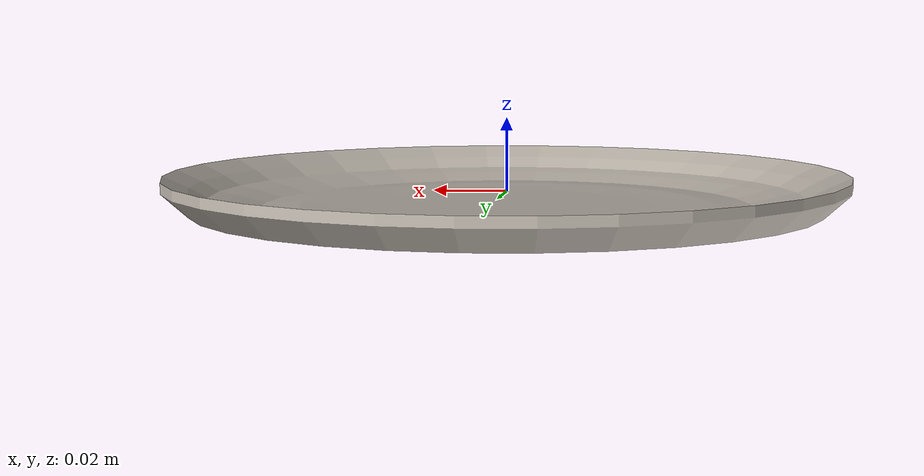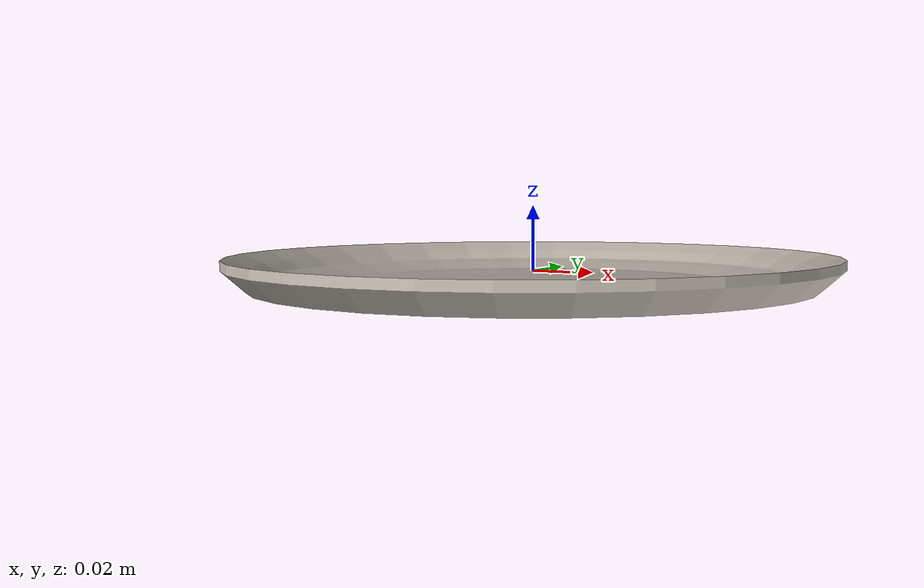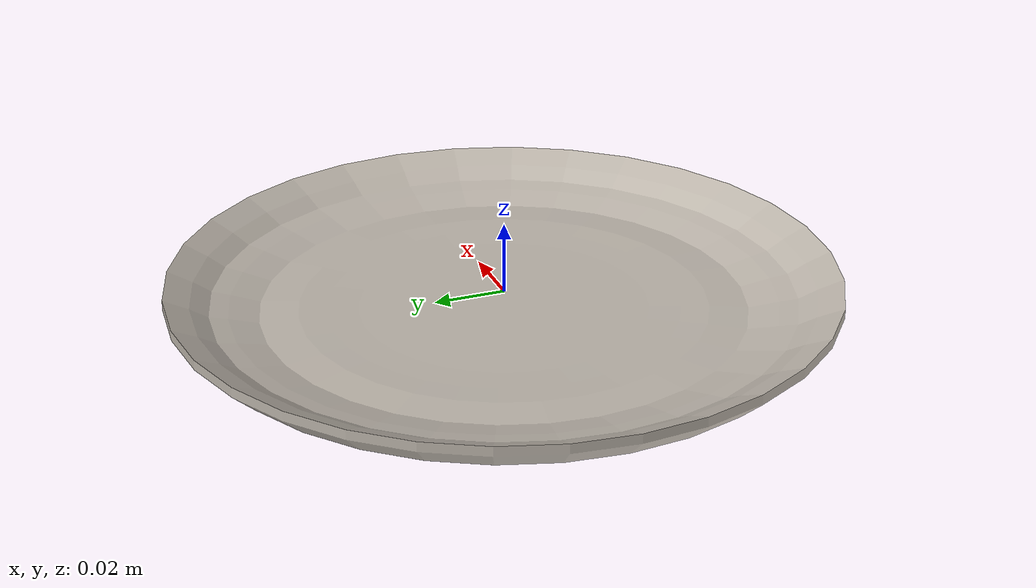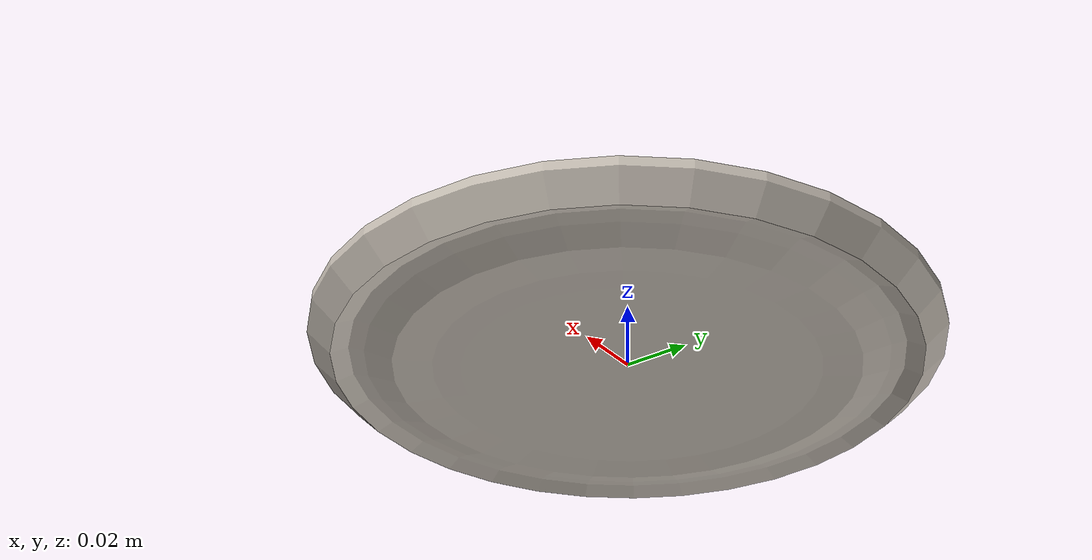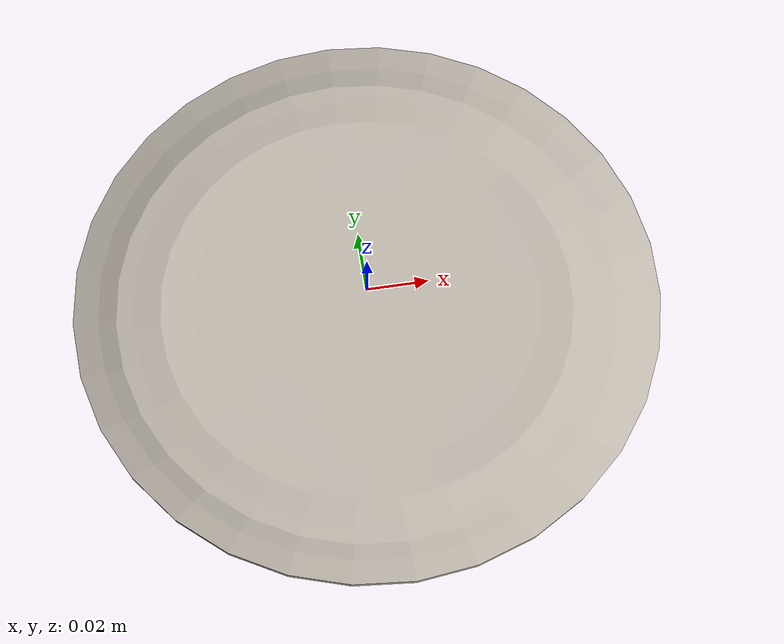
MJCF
<mujoco model="plate_42">
  <asset>
    <mesh file="visual/model_normalized_0.obj" name="model_normalized_0_vis" scale="0.185 0.185 0.185" refquat="1.0 0.0 0.0 0.0"/>
    <mesh file="collision/model_normalized_collision_22.obj" name="model_normalized_collision_22._coll" scale="0.185 0.185 0.185" refquat="1.0 0.0 0.0 0.0"/>
    <mesh file="collision/model_normalized_collision_23.obj" name="model_normalized_collision_23._coll" scale="0.185 0.185 0.185" refquat="1.0 0.0 0.0 0.0"/>
    <mesh file="collision/model_normalized_collision_21.obj" name="model_normalized_collision_21._coll" scale="0.185 0.185 0.185" refquat="1.0 0.0 0.0 0.0"/>
    <mesh file="collision/model_normalized_collision_20.obj" name="model_normalized_collision_20._coll" scale="0.185 0.185 0.185" refquat="1.0 0.0 0.0 0.0"/>
    <mesh file="collision/model_normalized_collision_24.obj" name="model_normalized_collision_24._coll" scale="0.185 0.185 0.185" refquat="1.0 0.0 0.0 0.0"/>
    <mesh file="collision/model_normalized_collision_30.obj" name="model_normalized_collision_30._coll" scale="0.185 0.185 0.185" refquat="1.0 0.0 0.0 0.0"/>
    <mesh file="collision/model_normalized_collision_18.obj" name="model_normalized_collision_18._coll" scale="0.185 0.185 0.185" refquat="1.0 0.0 0.0 0.0"/>
    <mesh file="collision/model_normalized_collision_19.obj" name="model_normalized_collision_19._coll" scale="0.185 0.185 0.185" refquat="1.0 0.0 0.0 0.0"/>
    <mesh file="collision/model_normalized_collision_31.obj" name="model_normalized_collision_31._coll" scale="0.185 0.185 0.185" refquat="1.0 0.0 0.0 0.0"/>
    <mesh file="collision/model_normalized_collision_25.obj" name="model_normalized_collision_25._coll" scale="0.185 0.185 0.185" refquat="1.0 0.0 0.0 0.0"/>
    <mesh file="collision/model_normalized_collision_27.obj" name="model_normalized_collision_27._coll" scale="0.185 0.185 0.185" refquat="1.0 0.0 0.0 0.0"/>
    <mesh file="collision/model_normalized_collision_26.obj" name="model_normalized_collision_26._coll" scale="0.185 0.185 0.185" refquat="1.0 0.0 0.0 0.0"/>
    <mesh file="collision/model_normalized_collision_9.obj" name="model_normalized_collision_9._coll" scale="0.185 0.185 0.185" refquat="1.0 0.0 0.0 0.0"/>
    <mesh file="collision/model_normalized_collision_8.obj" name="model_normalized_collision_8._coll" scale="0.185 0.185 0.185" refquat="1.0 0.0 0.0 0.0"/>
    <mesh file="collision/model_normalized_collision_6.obj" name="model_normalized_collision_6._coll" scale="0.185 0.185 0.185" refquat="1.0 0.0 0.0 0.0"/>
    <mesh file="collision/model_normalized_collision_7.obj" name="model_normalized_collision_7._coll" scale="0.185 0.185 0.185" refquat="1.0 0.0 0.0 0.0"/>
    <mesh file="collision/model_normalized_collision_5.obj" name="model_normalized_collision_5._coll" scale="0.185 0.185 0.185" refquat="1.0 0.0 0.0 0.0"/>
    <mesh file="collision/model_normalized_collision_4.obj" name="model_normalized_collision_4._coll" scale="0.185 0.185 0.185" refquat="1.0 0.0 0.0 0.0"/>
    <mesh file="collision/model_normalized_collision_0.obj" name="model_normalized_collision_0._coll" scale="0.185 0.185 0.185" refquat="1.0 0.0 0.0 0.0"/>
    <mesh file="collision/model_normalized_collision_1.obj" name="model_normalized_collision_1._coll" scale="0.185 0.185 0.185" refquat="1.0 0.0 0.0 0.0"/>
    <mesh file="collision/model_normalized_collision_3.obj" name="model_normalized_collision_3._coll" scale="0.185 0.185 0.185" refquat="1.0 0.0 0.0 0.0"/>
    <mesh file="collision/model_normalized_collision_2.obj" name="model_normalized_collision_2._coll" scale="0.185 0.185 0.185" refquat="1.0 0.0 0.0 0.0"/>
    <mesh file="collision/model_normalized_collision_17.obj" name="model_normalized_collision_17._coll" scale="0.185 0.185 0.185" refquat="1.0 0.0 0.0 0.0"/>
    <mesh file="collision/model_normalized_collision_16.obj" name="model_normalized_collision_16._coll" scale="0.185 0.185 0.185" refquat="1.0 0.0 0.0 0.0"/>
    <mesh file="collision/model_normalized_collision_28.obj" name="model_normalized_collision_28._coll" scale="0.185 0.185 0.185" refquat="1.0 0.0 0.0 0.0"/>
    <mesh file="collision/model_normalized_collision_14.obj" name="model_normalized_collision_14._coll" scale="0.185 0.185 0.185" refquat="1.0 0.0 0.0 0.0"/>
    <mesh file="collision/model_normalized_collision_15.obj" name="model_normalized_collision_15._coll" scale="0.185 0.185 0.185" refquat="1.0 0.0 0.0 0.0"/>
    <mesh file="collision/model_normalized_collision_29.obj" name="model_normalized_collision_29._coll" scale="0.185 0.185 0.185" refquat="1.0 0.0 0.0 0.0"/>
    <mesh file="collision/model_normalized_collision_11.obj" name="model_normalized_collision_11._coll" scale="0.185 0.185 0.185" refquat="1.0 0.0 0.0 0.0"/>
    <mesh file="collision/model_normalized_collision_10.obj" name="model_normalized_collision_10._coll" scale="0.185 0.185 0.185" refquat="1.0 0.0 0.0 0.0"/>
    <mesh file="collision/model_normalized_collision_12.obj" name="model_normalized_collision_12._coll" scale="0.185 0.185 0.185" refquat="1.0 0.0 0.0 0.0"/>
    <mesh file="collision/model_normalized_collision_13.obj" name="model_normalized_collision_13._coll" scale="0.185 0.185 0.185" refquat="1.0 0.0 0.0 0.0"/>
    <texture type="2d" name="image0" file="visual/image0.png"/>
    <material name="Plate_Material" texture="image0" specular="0.5" shininess="0.359999993"/>
  </asset>
  <worldbody>
    <body>
      <body name="object">
        <geom solimp="0.998 0.998 0.001" solref="0.001 1" density="100" friction="5.0 0.3 0.1" type="mesh" mesh="model_normalized_0_vis" conaffinity="0" contype="0" group="1" material="Plate_Material"/>
        <geom solimp="0.998 0.998 0.001" solref="0.001 1" density="100" friction="5.0 0.3 0.1" type="mesh" mesh="model_normalized_collision_22._coll" group="0" rgba="0.8 0.8 0.8 0.0"/>
        <geom solimp="0.998 0.998 0.001" solref="0.001 1" density="100" friction="5.0 0.3 0.1" type="mesh" mesh="model_normalized_collision_23._coll" group="0" rgba="0.8 0.8 0.8 0.0"/>
        <geom solimp="0.998 0.998 0.001" solref="0.001 1" density="100" friction="5.0 0.3 0.1" type="mesh" mesh="model_normalized_collision_21._coll" group="0" rgba="0.8 0.8 0.8 0.0"/>
        <geom solimp="0.998 0.998 0.001" solref="0.001 1" density="100" friction="5.0 0.3 0.1" type="mesh" mesh="model_normalized_collision_20._coll" group="0" rgba="0.8 0.8 0.8 0.0"/>
        <geom solimp="0.998 0.998 0.001" solref="0.001 1" density="100" friction="5.0 0.3 0.1" type="mesh" mesh="model_normalized_collision_24._coll" group="0" rgba="0.8 0.8 0.8 0.0"/>
        <geom solimp="0.998 0.998 0.001" solref="0.001 1" density="100" friction="5.0 0.3 0.1" type="mesh" mesh="model_normalized_collision_30._coll" group="0" rgba="0.8 0.8 0.8 0.0"/>
        <geom solimp="0.998 0.998 0.001" solref="0.001 1" density="100" friction="5.0 0.3 0.1" type="mesh" mesh="model_normalized_collision_18._coll" group="0" rgba="0.8 0.8 0.8 0.0"/>
        <geom solimp="0.998 0.998 0.001" solref="0.001 1" density="100" friction="5.0 0.3 0.1" type="mesh" mesh="model_normalized_collision_19._coll" group="0" rgba="0.8 0.8 0.8 0.0"/>
        <geom solimp="0.998 0.998 0.001" solref="0.001 1" density="100" friction="5.0 0.3 0.1" type="mesh" mesh="model_normalized_collision_31._coll" group="0" rgba="0.8 0.8 0.8 0.0"/>
        <geom solimp="0.998 0.998 0.001" solref="0.001 1" density="100" friction="5.0 0.3 0.1" type="mesh" mesh="model_normalized_collision_25._coll" group="0" rgba="0.8 0.8 0.8 0.0"/>
        <geom solimp="0.998 0.998 0.001" solref="0.001 1" density="100" friction="5.0 0.3 0.1" type="mesh" mesh="model_normalized_collision_27._coll" group="0" rgba="0.8 0.8 0.8 0.0"/>
        <geom solimp="0.998 0.998 0.001" solref="0.001 1" density="100" friction="5.0 0.3 0.1" type="mesh" mesh="model_normalized_collision_26._coll" group="0" rgba="0.8 0.8 0.8 0.0"/>
        <geom solimp="0.998 0.998 0.001" solref="0.001 1" density="100" friction="5.0 0.3 0.1" type="mesh" mesh="model_normalized_collision_9._coll" group="0" rgba="0.8 0.8 0.8 0.0"/>
        <geom solimp="0.998 0.998 0.001" solref="0.001 1" density="100" friction="5.0 0.3 0.1" type="mesh" mesh="model_normalized_collision_8._coll" group="0" rgba="0.8 0.8 0.8 0.0"/>
        <geom solimp="0.998 0.998 0.001" solref="0.001 1" density="100" friction="5.0 0.3 0.1" type="mesh" mesh="model_normalized_collision_6._coll" group="0" rgba="0.8 0.8 0.8 0.0"/>
        <geom solimp="0.998 0.998 0.001" solref="0.001 1" density="100" friction="5.0 0.3 0.1" type="mesh" mesh="model_normalized_collision_7._coll" group="0" rgba="0.8 0.8 0.8 0.0"/>
        <geom solimp="0.998 0.998 0.001" solref="0.001 1" density="100" friction="5.0 0.3 0.1" type="mesh" mesh="model_normalized_collision_5._coll" group="0" rgba="0.8 0.8 0.8 0.0"/>
        <geom solimp="0.998 0.998 0.001" solref="0.001 1" density="100" friction="5.0 0.3 0.1" type="mesh" mesh="model_normalized_collision_4._coll" group="0" rgba="0.8 0.8 0.8 0.0"/>
        <geom solimp="0.998 0.998 0.001" solref="0.001 1" density="100" friction="5.0 0.3 0.1" type="mesh" mesh="model_normalized_collision_0._coll" group="0" rgba="0.8 0.8 0.8 0.0"/>
        <geom solimp="0.998 0.998 0.001" solref="0.001 1" density="100" friction="5.0 0.3 0.1" type="mesh" mesh="model_normalized_collision_1._coll" group="0" rgba="0.8 0.8 0.8 0.0"/>
        <geom solimp="0.998 0.998 0.001" solref="0.001 1" density="100" friction="5.0 0.3 0.1" type="mesh" mesh="model_normalized_collision_3._coll" group="0" rgba="0.8 0.8 0.8 0.0"/>
        <geom solimp="0.998 0.998 0.001" solref="0.001 1" density="100" friction="5.0 0.3 0.1" type="mesh" mesh="model_normalized_collision_2._coll" group="0" rgba="0.8 0.8 0.8 0.0"/>
        <geom solimp="0.998 0.998 0.001" solref="0.001 1" density="100" friction="5.0 0.3 0.1" type="mesh" mesh="model_normalized_collision_17._coll" group="0" rgba="0.8 0.8 0.8 0.0"/>
        <geom solimp="0.998 0.998 0.001" solref="0.001 1" density="100" friction="5.0 0.3 0.1" type="mesh" mesh="model_normalized_collision_16._coll" group="0" rgba="0.8 0.8 0.8 0.0"/>
        <geom solimp="0.998 0.998 0.001" solref="0.001 1" density="100" friction="5.0 0.3 0.1" type="mesh" mesh="model_normalized_collision_28._coll" group="0" rgba="0.8 0.8 0.8 0.0"/>
        <geom solimp="0.998 0.998 0.001" solref="0.001 1" density="100" friction="5.0 0.3 0.1" type="mesh" mesh="model_normalized_collision_14._coll" group="0" rgba="0.8 0.8 0.8 0.0"/>
        <geom solimp="0.998 0.998 0.001" solref="0.001 1" density="100" friction="5.0 0.3 0.1" type="mesh" mesh="model_normalized_collision_15._coll" group="0" rgba="0.8 0.8 0.8 0.0"/>
        <geom solimp="0.998 0.998 0.001" solref="0.001 1" density="100" friction="5.0 0.3 0.1" type="mesh" mesh="model_normalized_collision_29._coll" group="0" rgba="0.8 0.8 0.8 0.0"/>
        <geom solimp="0.998 0.998 0.001" solref="0.001 1" density="100" friction="5.0 0.3 0.1" type="mesh" mesh="model_normalized_collision_11._coll" group="0" rgba="0.8 0.8 0.8 0.0"/>
        <geom solimp="0.998 0.998 0.001" solref="0.001 1" density="100" friction="5.0 0.3 0.1" type="mesh" mesh="model_normalized_collision_10._coll" group="0" rgba="0.8 0.8 0.8 0.0"/>
        <geom solimp="0.998 0.998 0.001" solref="0.001 1" density="100" friction="5.0 0.3 0.1" type="mesh" mesh="model_normalized_collision_12._coll" group="0" rgba="0.8 0.8 0.8 0.0"/>
        <geom solimp="0.998 0.998 0.001" solref="0.001 1" density="100" friction="5.0 0.3 0.1" type="mesh" mesh="model_normalized_collision_13._coll" group="0" rgba="0.8 0.8 0.8 0.0"/>
      </body>
      <site rgba="0 0 0 0" size="0.005" pos="0.0002734235250000047 -0.00013670760000000198 -0.00478982945" name="bottom_site"/>
      <site rgba="0 0 0 0" size="0.005" pos="0.0002734235250000047 -0.00013670760000000198 0.0047911540499999995" name="top_site"/>
      <site rgba="0 0 0 0" size="0.005" pos="0.09155647410000001 0.0910096548 6.622999999999178e-07" name="horizontal_radius_site"/>
    </body>
  </worldbody>
</mujoco>
